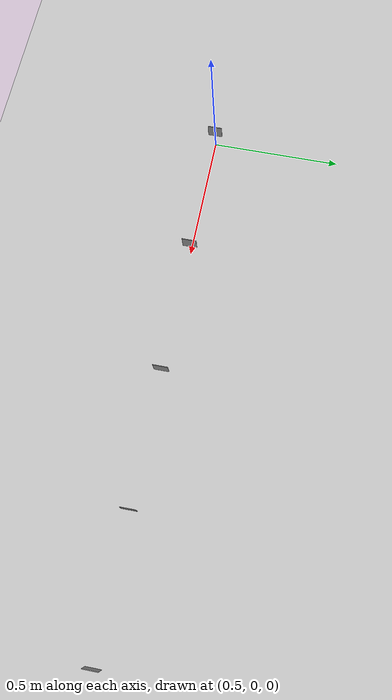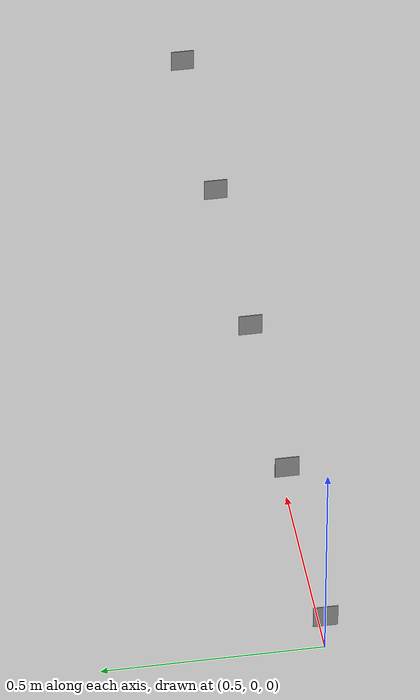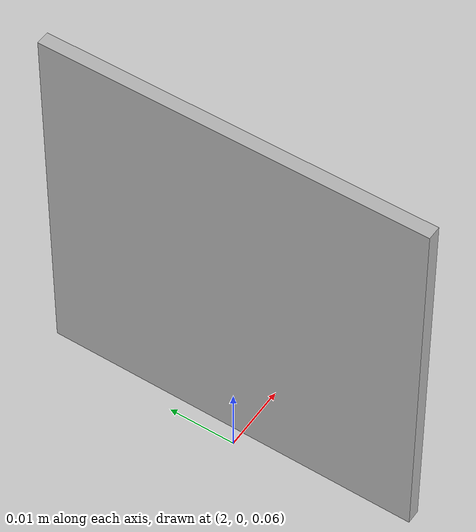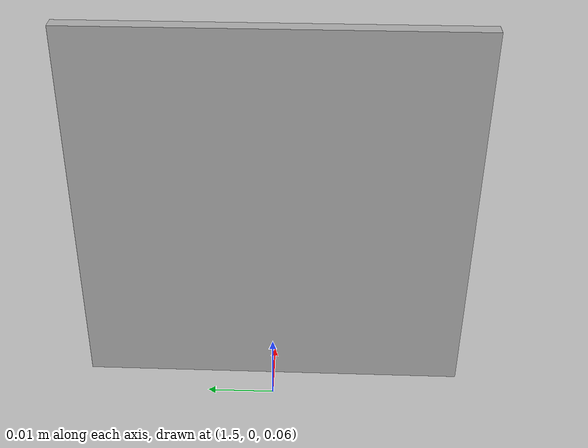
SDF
<sdf version="1.4">
  <world name="default">

    <scene>
      <ambient>0.4 0.4 0.4 1</ambient>
      <background>0.7 0.7 0.7 1</background>
      <shadows>true</shadows>
    </scene>

    <!-- A global light source -->
    <include>
      <uri>model://sun</uri>
    </include>

    <!-- A ground plane -->
    <include>
      <uri>model://ground_plane</uri>
    </include>

    <!-- Load Marker 0 -->
    <include>
      <uri>model://cannyone_simulation/models/marker0</uri>
      <name>Marker0</name>
      <pose>0.5 0.0 0.065 0 0 3.14</pose>
    </include>

    <!-- Load Marekr 1 -->
    <include>
      <uri>model://cannyone_simulation/models/marker1</uri>
      <name>Marker1</name>
      <pose>1.0 0.0 0.065 0 0 3.14</pose>
    </include>

    <!-- Load Marekr 2 -->
    <include>
      <uri>model://cannyone_simulation/models/marker2</uri>
      <name>Marker2</name>
      <pose>1.5 0.0 0.065 0 0 3.14</pose>
    </include>

    <!-- Load Marekr 3 -->
    <include>
      <uri>model://cannyone_simulation/models/marker3</uri>
      <name>Marker3</name>
      <pose>2.0 0.0 0.065 0 0 3.14</pose>
    </include>

    <!-- Load Marekr 4 -->
    <include>
      <uri>model://cannyone_simulation/models/marker4</uri>
      <name>Marker4</name>
      <pose>2.5 0.0 0.065 0 0 3.14</pose>
    </include>

    <physics type="ode">
      <real_time_update_rate>1000.0</real_time_update_rate>
      <max_step_size>0.001</max_step_size>
      <real_time_factor>1</real_time_factor>
      <ode>
        <solver>
          <type>quick</type>
          <iters>150</iters>
          <precon_iters>0</precon_iters>
          <sor>1.400000</sor>
          <use_dynamic_moi_rescaling>1</use_dynamic_moi_rescaling>
        </solver>
        <constraints>
          <cfm>0.00001</cfm>
          <erp>0.2</erp>
          <contact_max_correcting_vel>2000.000000</contact_max_correcting_vel>
          <contact_surface_layer>0.01000</contact_surface_layer>
        </constraints>
      </ode>
    </physics>
  </world>

</sdf>

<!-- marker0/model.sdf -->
<sdf version="1.6">
  <model name="Marker0">
    <static>true</static>
    <link name="link">
      <visual name="visual">
        <geometry>
          <mesh>
            <uri>model://cannyone_simulation/models/marker0/meshes/Marker0.dae</uri>
          <scale>1.0 1.0 1.0</scale></mesh>
        </geometry>
      </visual>
    </link>
  </model>
</sdf>

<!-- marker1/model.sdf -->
<sdf version="1.6">
  <model name="Marker1">
    <static>true</static>
    <link name="link">
      <visual name="visual">
        <geometry>
          <mesh>
            <uri>model://cannyone_simulation/models/marker1/meshes/Marker1.dae</uri>
          <scale>1.0 1.0 1.0</scale></mesh>
        </geometry>
      </visual>
    </link>
  </model>
</sdf>

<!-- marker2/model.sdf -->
<sdf version="1.6">
  <model name="Marker2">
    <static>true</static>
    <link name="link">
      <visual name="visual">
        <geometry>
          <mesh>
            <uri>model://cannyone_simulation/models/marker2/meshes/Marker2.dae</uri>
          <scale>1.0 1.0 1.0</scale></mesh>
        </geometry>
      </visual>
    </link>
  </model>
</sdf>

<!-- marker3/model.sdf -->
<sdf version="1.6">
  <model name="Marker3">
    <static>true</static>
    <link name="link">
      <visual name="visual">
        <geometry>
          <mesh>
            <uri>model://cannyone_simulation/models/marker3/meshes/Marker3.dae</uri>
          <scale>1.0 1.0 1.0</scale></mesh>
        </geometry>
      </visual>
    </link>
  </model>
</sdf>

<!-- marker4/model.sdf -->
<sdf version="1.6">
  <model name="Marker4">
    <static>true</static>
    <link name="link">
      <visual name="visual">
        <geometry>
          <mesh>
            <uri>model://cannyone_simulation/models/marker4/meshes/Marker4.dae</uri>
          <scale>1.0 1.0 1.0</scale></mesh>
        </geometry>
      </visual>
    </link>
  </model>
</sdf>
